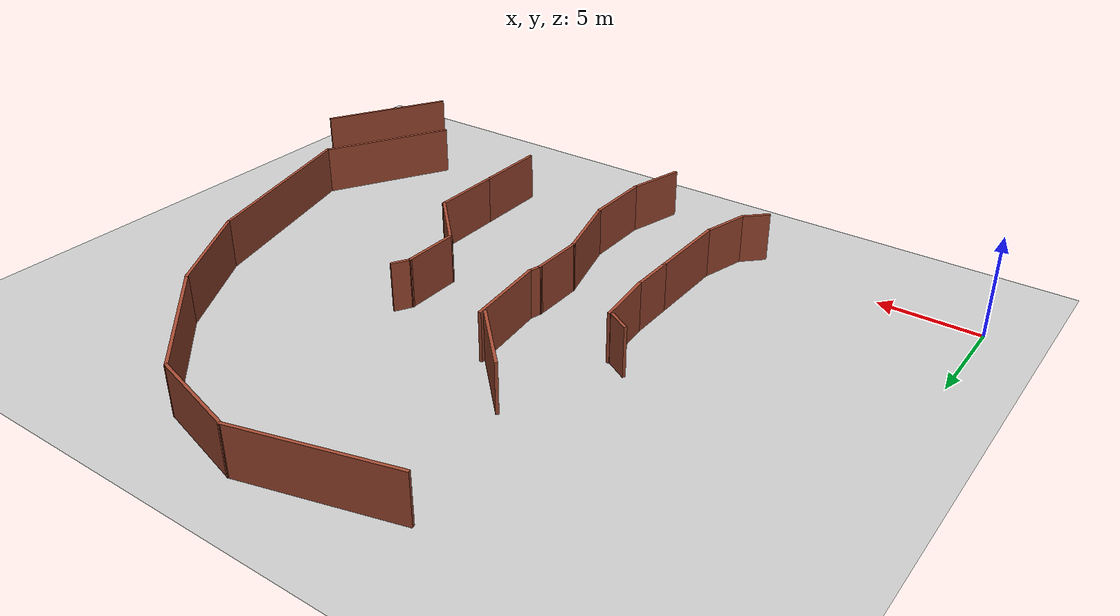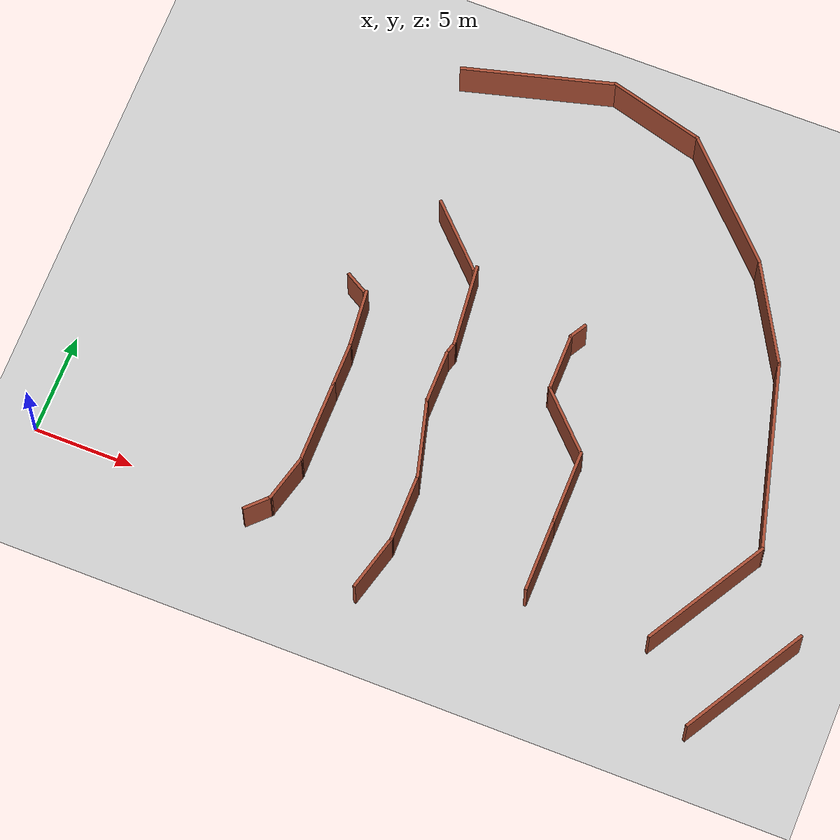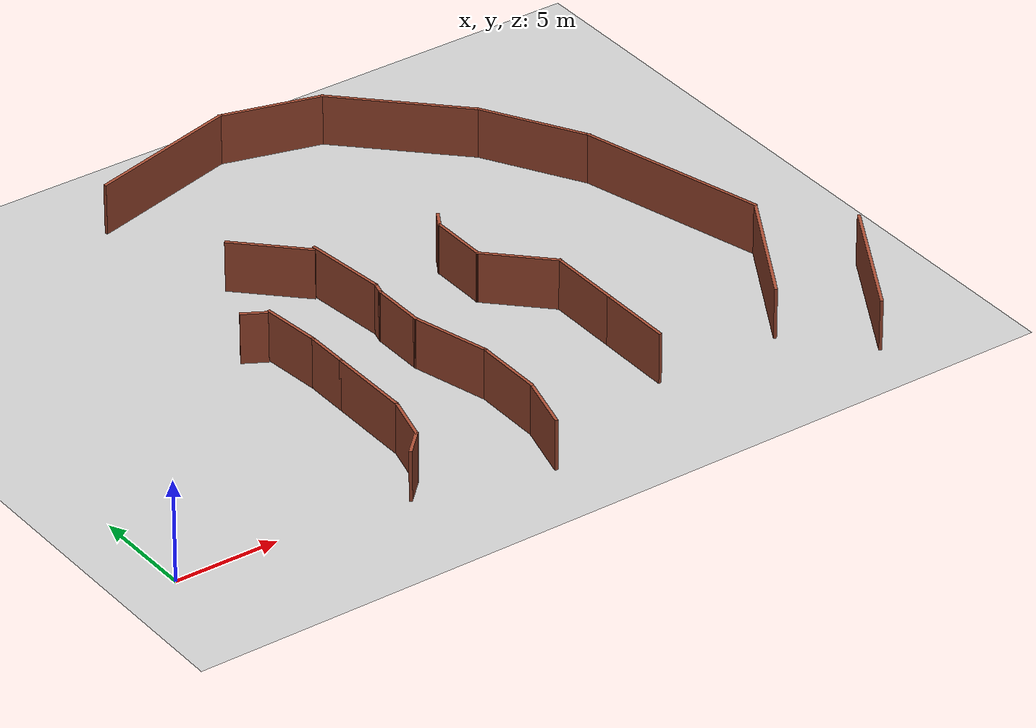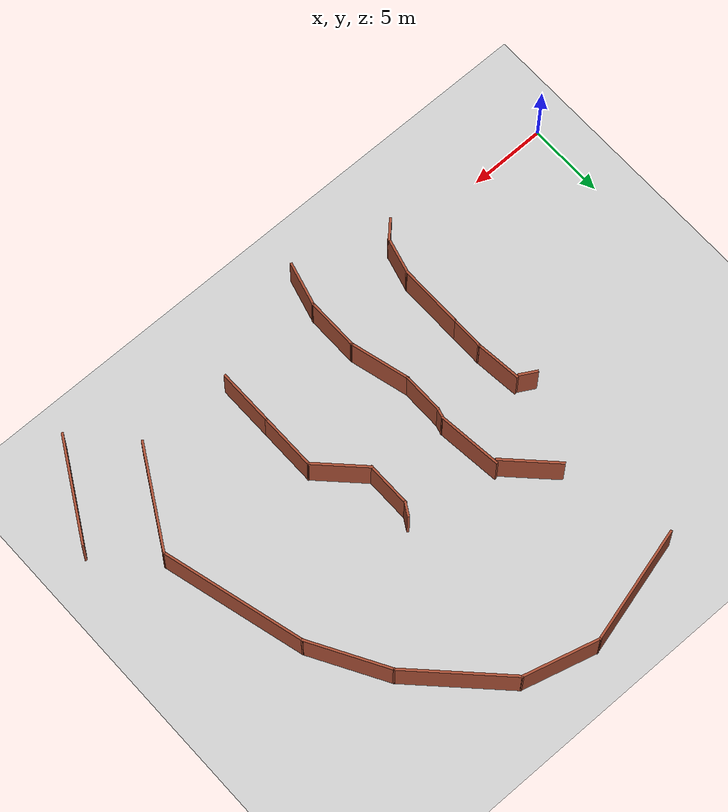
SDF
<sdf version="1.5">
 <world name="default">
  <model name="ground_plane">
   <static>1</static>
   <link name="link">
    <collision name="collision">
     <geometry><plane><normal>0 0 1</normal><size>100 100</size></plane></geometry>
     <surface><friction><ode><mu>100</mu><mu2>50</mu2></ode></friction></surface>
    </collision>
    <visual name="visual">
     <cast_shadows>0</cast_shadows>
     <geometry><plane><normal>0 0 1</normal><size>100 100</size></plane></geometry>
     <material>
      <script><uri>file://media/materials/scripts/gazebo.material</uri><name>Gazebo/Grey</name></script>
     </material>
    </visual>
   </link>
  </model>
  <model name="Untitled1111">
   <link name="Wall_102">
    <pose>15.4586 -1.70898 0 0 -0 1.309</pose>
    <visual name="Wall_102_Visual">
     <pose>0 0 1.25 0 -0 0</pose>
     <geometry><box><size>3 0.15 2.5</size></box></geometry>
     <material>
      <script><uri>file://media/materials/scripts/gazebo.material</uri><name>Gazebo/Bricks</name></script>
      <ambient>1 1 1 1</ambient>
      <shader type="pixel"/>
     </material>
     <meta><layer>0</layer></meta>
    </visual>
    <collision name="Wall_102_Collision">
     <pose>0 0 1.25 0 -0 0</pose>
     <geometry><box><size>3 0.15 2.5</size></box></geometry>
     <surface>
      <friction>
       <ode><mu>1</mu><mu2>1</mu2><fdir1>0 0 0</fdir1><slip1>0</slip1><slip2>0</slip2></ode>
       <torsional>
        <coefficient>1</coefficient>
        <patch_radius>0</patch_radius>
        <surface_radius>0</surface_radius>
        <use_patch_radius>1</use_patch_radius>
        <ode><slip>0</slip></ode>
       </torsional>
      </friction>
      <bounce><restitution_coefficient>0</restitution_coefficient><threshold>1e+06</threshold></bounce>
      <contact>
       <collide_without_contact>0</collide_without_contact>
       <collide_without_contact_bitmask>1</collide_without_contact_bitmask>
       <collide_bitmask>1</collide_bitmask>
       <ode>
        <soft_cfm>0</soft_cfm>
        <soft_erp>0.2</soft_erp>
        <kp>1e+13</kp>
        <kd>1</kd>
        <max_vel>0.01</max_vel>
        <min_depth>0</min_depth>
       </ode>
       <bullet>
        <split_impulse>1</split_impulse>
        <split_impulse_penetration_threshold>-0.01</split_impulse_penetration_threshold>
        <soft_cfm>0</soft_cfm>
        <soft_erp>0.2</soft_erp>
        <kp>1e+13</kp>
        <kd>1</kd>
       </bullet>
      </contact>
     </surface>
    </collision>
   </link>
   <link name="Wall_103">
    <pose>15.8274 1.34246 0 0 -0 1.5708</pose>
    <visual name="Wall_103_Visual">
     <pose>0 0 1.25 0 -0 0</pose>
     <geometry><box><size>3.5 0.15 2.5</size></box></geometry>
     <material>
      <script><uri>file://media/materials/scripts/gazebo.material</uri><name>Gazebo/Bricks</name></script>
      <ambient>1 1 1 1</ambient>
      <shader type="pixel"/>
     </material>
     <meta><layer>0</layer></meta>
    </visual>
    <collision name="Wall_103_Collision">
     <pose>0 0 1.25 0 -0 0</pose>
     <geometry><box><size>3.5 0.15 2.5</size></box></geometry>
     <surface>
      <friction>
       <ode><mu>1</mu><mu2>1</mu2><fdir1>0 0 0</fdir1><slip1>0</slip1><slip2>0</slip2></ode>
       <torsional>
        <coefficient>1</coefficient>
        <patch_radius>0</patch_radius>
        <surface_radius>0</surface_radius>
        <use_patch_radius>1</use_patch_radius>
        <ode><slip>0</slip></ode>
       </torsional>
      </friction>
      <bounce><restitution_coefficient>0</restitution_coefficient><threshold>1e+06</threshold></bounce>
      <contact>
       <collide_without_contact>0</collide_without_contact>
       <collide_without_contact_bitmask>1</collide_without_contact_bitmask>
       <collide_bitmask>1</collide_bitmask>
       <ode>
        <soft_cfm>0</soft_cfm>
        <soft_erp>0.2</soft_erp>
        <kp>1e+13</kp>
        <kd>1</kd>
        <max_vel>0.01</max_vel>
        <min_depth>0</min_depth>
       </ode>
       <bullet>
        <split_impulse>1</split_impulse>
        <split_impulse_penetration_threshold>-0.01</split_impulse_penetration_threshold>
        <soft_cfm>0</soft_cfm>
        <soft_erp>0.2</soft_erp>
        <kp>1e+13</kp>
        <kd>1</kd>
       </bullet>
      </contact>
     </surface>
    </collision>
   </link>
   <link name="Wall_104">
    <pose>15.3292 4.87687 0 0 -0 1.8326</pose>
    <visual name="Wall_104_Visual">
     <pose>0 0 1.25 0 -0 0</pose>
     <geometry><box><size>4 0.15 2.5</size></box></geometry>
     <material>
      <script><uri>file://media/materials/scripts/gazebo.material</uri><name>Gazebo/Bricks</name></script>
      <ambient>1 1 1 1</ambient>
      <shader type="pixel"/>
     </material>
     <meta><layer>0</layer></meta>
    </visual>
    <collision name="Wall_104_Collision">
     <pose>0 0 1.25 0 -0 0</pose>
     <geometry><box><size>4 0.15 2.5</size></box></geometry>
     <surface>
      <friction>
       <ode><mu>1</mu><mu2>1</mu2><fdir1>0 0 0</fdir1><slip1>0</slip1><slip2>0</slip2></ode>
       <torsional>
        <coefficient>1</coefficient>
        <patch_radius>0</patch_radius>
        <surface_radius>0</surface_radius>
        <use_patch_radius>1</use_patch_radius>
        <ode><slip>0</slip></ode>
       </torsional>
      </friction>
      <bounce><restitution_coefficient>0</restitution_coefficient><threshold>1e+06</threshold></bounce>
      <contact>
       <collide_without_contact>0</collide_without_contact>
       <collide_without_contact_bitmask>1</collide_without_contact_bitmask>
       <collide_bitmask>1</collide_bitmask>
       <ode>
        <soft_cfm>0</soft_cfm>
        <soft_erp>0.2</soft_erp>
        <kp>1e+13</kp>
        <kd>1</kd>
        <max_vel>0.01</max_vel>
        <min_depth>0</min_depth>
       </ode>
       <bullet>
        <split_impulse>1</split_impulse>
        <split_impulse_penetration_threshold>-0.01</split_impulse_penetration_threshold>
        <soft_cfm>0</soft_cfm>
        <soft_erp>0.2</soft_erp>
        <kp>1e+13</kp>
        <kd>1</kd>
       </bullet>
      </contact>
     </surface>
    </collision>
   </link>
   <link name="Wall_105">
    <pose>14.831 8.03628 0 0 -0 1.5708</pose>
    <visual name="Wall_105_Visual">
     <pose>0 0 1.25 0 -0 0</pose>
     <geometry><box><size>2.75 0.15 2.5</size></box></geometry>
     <material>
      <script><uri>file://media/materials/scripts/gazebo.material</uri><name>Gazebo/Bricks</name></script>
      <ambient>1 1 1 1</ambient>
      <shader type="pixel"/>
     </material>
     <meta><layer>0</layer></meta>
    </visual>
    <collision name="Wall_105_Collision">
     <pose>0 0 1.25 0 -0 0</pose>
     <geometry><box><size>2.75 0.15 2.5</size></box></geometry>
     <surface>
      <friction>
       <ode><mu>1</mu><mu2>1</mu2><fdir1>0 0 0</fdir1><slip1>0</slip1><slip2>0</slip2></ode>
       <torsional>
        <coefficient>1</coefficient>
        <patch_radius>0</patch_radius>
        <surface_radius>0</surface_radius>
        <use_patch_radius>1</use_patch_radius>
        <ode><slip>0</slip></ode>
       </torsional>
      </friction>
      <bounce><restitution_coefficient>0</restitution_coefficient><threshold>1e+06</threshold></bounce>
      <contact>
       <collide_without_contact>0</collide_without_contact>
       <collide_without_contact_bitmask>1</collide_without_contact_bitmask>
       <collide_bitmask>1</collide_bitmask>
       <ode>
        <soft_cfm>0</soft_cfm>
        <soft_erp>0.2</soft_erp>
        <kp>1e+13</kp>
        <kd>1</kd>
        <max_vel>0.01</max_vel>
        <min_depth>0</min_depth>
       </ode>
       <bullet>
        <split_impulse>1</split_impulse>
        <split_impulse_penetration_threshold>-0.01</split_impulse_penetration_threshold>
        <soft_cfm>0</soft_cfm>
        <soft_erp>0.2</soft_erp>
        <kp>1e+13</kp>
        <kd>1</kd>
       </bullet>
      </contact>
     </surface>
    </collision>
   </link>
   <link name="Wall_106">
    <pose>14.9086 9.62606 0 0 -0 1.309</pose>
    <visual name="Wall_106_Visual">
     <pose>0 0 1.25 0 -0 0</pose>
     <geometry><box><size>0.75 0.15 2.5</size></box></geometry>
     <material>
      <script><uri>file://media/materials/scripts/gazebo.material</uri><name>Gazebo/Bricks</name></script>
      <ambient>1 1 1 1</ambient>
      <shader type="pixel"/>
     </material>
     <meta><layer>0</layer></meta>
    </visual>
    <collision name="Wall_106_Collision">
     <pose>0 0 1.25 0 -0 0</pose>
     <geometry><box><size>0.75 0.15 2.5</size></box></geometry>
     <surface>
      <friction>
       <ode><mu>1</mu><mu2>1</mu2><fdir1>0 0 0</fdir1><slip1>0</slip1><slip2>0</slip2></ode>
       <torsional>
        <coefficient>1</coefficient>
        <patch_radius>0</patch_radius>
        <surface_radius>0</surface_radius>
        <use_patch_radius>1</use_patch_radius>
        <ode><slip>0</slip></ode>
       </torsional>
      </friction>
      <bounce><restitution_coefficient>0</restitution_coefficient><threshold>1e+06</threshold></bounce>
      <contact>
       <collide_without_contact>0</collide_without_contact>
       <collide_without_contact_bitmask>1</collide_without_contact_bitmask>
       <collide_bitmask>1</collide_bitmask>
       <ode>
        <soft_cfm>0</soft_cfm>
        <soft_erp>0.2</soft_erp>
        <kp>1e+13</kp>
        <kd>1</kd>
        <max_vel>0.01</max_vel>
        <min_depth>0</min_depth>
       </ode>
       <bullet>
        <split_impulse>1</split_impulse>
        <split_impulse_penetration_threshold>-0.01</split_impulse_penetration_threshold>
        <soft_cfm>0</soft_cfm>
        <soft_erp>0.2</soft_erp>
        <kp>1e+13</kp>
        <kd>1</kd>
       </bullet>
      </contact>
     </surface>
    </collision>
   </link>
   <link name="Wall_107">
    <pose>14.774 11.9399 0 0 -0 1.67529</pose>
    <visual name="Wall_107_Visual">
     <pose>0 0 1.25 0 -0 0</pose>
     <geometry><box><size>4.22037 0.15 2.5</size></box></geometry>
     <material>
      <script><uri>file://media/materials/scripts/gazebo.material</uri><name>Gazebo/Bricks</name></script>
      <ambient>1 1 1 1</ambient>
      <shader type="pixel"/>
     </material>
     <meta><layer>0</layer></meta>
    </visual>
    <collision name="Wall_107_Collision">
     <pose>0 0 1.25 0 -0 0</pose>
     <geometry><box><size>4.22037 0.15 2.5</size></box></geometry>
     <surface>
      <friction>
       <ode><mu>1</mu><mu2>1</mu2><fdir1>0 0 0</fdir1><slip1>0</slip1><slip2>0</slip2></ode>
       <torsional>
        <coefficient>1</coefficient>
        <patch_radius>0</patch_radius>
        <surface_radius>0</surface_radius>
        <use_patch_radius>1</use_patch_radius>
        <ode><slip>0</slip></ode>
       </torsional>
      </friction>
      <bounce><restitution_coefficient>0</restitution_coefficient><threshold>1e+06</threshold></bounce>
      <contact>
       <collide_without_contact>0</collide_without_contact>
       <collide_without_contact_bitmask>1</collide_without_contact_bitmask>
       <collide_bitmask>1</collide_bitmask>
       <ode>
        <soft_cfm>0</soft_cfm>
        <soft_erp>0.2</soft_erp>
        <kp>1e+13</kp>
        <kd>1</kd>
        <max_vel>0.01</max_vel>
        <min_depth>0</min_depth>
       </ode>
       <bullet>
        <split_impulse>1</split_impulse>
        <split_impulse_penetration_threshold>-0.01</split_impulse_penetration_threshold>
        <soft_cfm>0</soft_cfm>
        <soft_erp>0.2</soft_erp>
        <kp>1e+13</kp>
        <kd>1</kd>
       </bullet>
      </contact>
     </surface>
    </collision>
   </link>
   <link name="Wall_108">
    <pose>13.059 15.1837 0 0 -0 2.35619</pose>
    <visual name="Wall_108_Visual">
     <pose>0 0 1.25 0 -0 0</pose>
     <geometry><box><size>4 0.15 2.5</size></box></geometry>
     <material>
      <script><uri>file://media/materials/scripts/gazebo.material</uri><name>Gazebo/Bricks</name></script>
      <ambient>1 1 1 1</ambient>
      <shader type="pixel"/>
     </material>
     <meta><layer>0</layer></meta>
    </visual>
    <collision name="Wall_108_Collision">
     <pose>0 0 1.25 0 -0 0</pose>
     <geometry><box><size>4 0.15 2.5</size></box></geometry>
     <surface>
      <friction>
       <ode><mu>1</mu><mu2>1</mu2><fdir1>0 0 0</fdir1><slip1>0</slip1><slip2>0</slip2></ode>
       <torsional>
        <coefficient>1</coefficient>
        <patch_radius>0</patch_radius>
        <surface_radius>0</surface_radius>
        <use_patch_radius>1</use_patch_radius>
        <ode><slip>0</slip></ode>
       </torsional>
      </friction>
      <bounce><restitution_coefficient>0</restitution_coefficient><threshold>1e+06</threshold></bounce>
      <contact>
       <collide_without_contact>0</collide_without_contact>
       <collide_without_contact_bitmask>1</collide_without_contact_bitmask>
       <collide_bitmask>1</collide_bitmask>
       <ode>
        <soft_cfm>0</soft_cfm>
        <soft_erp>0.2</soft_erp>
        <kp>1e+13</kp>
        <kd>1</kd>
        <max_vel>0.01</max_vel>
        <min_depth>0</min_depth>
       </ode>
       <bullet>
        <split_impulse>1</split_impulse>
        <split_impulse_penetration_threshold>-0.01</split_impulse_penetration_threshold>
        <soft_cfm>0</soft_cfm>
        <soft_erp>0.2</soft_erp>
        <kp>1e+13</kp>
        <kd>1</kd>
       </bullet>
      </contact>
     </surface>
    </collision>
   </link>
   <link name="Wall_134">
    <pose>22.5764 1.50892 0 0 -0 1.5708</pose>
    <visual name="Wall_134_Visual">
     <pose>0 0 1.25 0 -0 0</pose>
     <geometry><box><size>3.75 0.15 2.5</size></box></geometry>
     <material>
      <script><uri>file://media/materials/scripts/gazebo.material</uri><name>Gazebo/Bricks</name></script>
      <ambient>1 1 1 1</ambient>
      <shader type="pixel"/>
     </material>
     <meta><layer>0</layer></meta>
    </visual>
    <collision name="Wall_134_Collision">
     <pose>0 0 1.25 0 -0 0</pose>
     <geometry><box><size>3.75 0.15 2.5</size></box></geometry>
     <surface>
      <friction>
       <ode><mu>1</mu><mu2>1</mu2><fdir1>0 0 0</fdir1><slip1>0</slip1><slip2>0</slip2></ode>
       <torsional>
        <coefficient>1</coefficient>
        <patch_radius>0</patch_radius>
        <surface_radius>0</surface_radius>
        <use_patch_radius>1</use_patch_radius>
        <ode><slip>0</slip></ode>
       </torsional>
      </friction>
      <bounce><restitution_coefficient>0</restitution_coefficient><threshold>1e+06</threshold></bounce>
      <contact>
       <collide_without_contact>0</collide_without_contact>
       <collide_without_contact_bitmask>1</collide_without_contact_bitmask>
       <collide_bitmask>1</collide_bitmask>
       <ode>
        <soft_cfm>0</soft_cfm>
        <soft_erp>0.2</soft_erp>
        <kp>1e+13</kp>
        <kd>1</kd>
        <max_vel>0.01</max_vel>
        <min_depth>0</min_depth>
       </ode>
       <bullet>
        <split_impulse>1</split_impulse>
        <split_impulse_penetration_threshold>-0.01</split_impulse_penetration_threshold>
        <soft_cfm>0</soft_cfm>
        <soft_erp>0.2</soft_erp>
        <kp>1e+13</kp>
        <kd>1</kd>
       </bullet>
      </contact>
     </surface>
    </collision>
   </link>
   <link name="Wall_135">
    <pose>22.5764 5.10892 0 0 -0 1.5708</pose>
    <visual name="Wall_135_Visual">
     <pose>0 0 1.25 0 -0 0</pose>
     <geometry><box><size>3.75 0.15 2.5</size></box></geometry>
     <material>
      <script><uri>file://media/materials/scripts/gazebo.material</uri><name>Gazebo/Bricks</name></script>
      <ambient>1 1 1 1</ambient>
      <shader type="pixel"/>
     </material>
     <meta><layer>0</layer></meta>
    </visual>
    <collision name="Wall_135_Collision">
     <pose>0 0 1.25 0 -0 0</pose>
     <geometry><box><size>3.75 0.15 2.5</size></box></geometry>
     <surface>
      <friction>
       <ode><mu>1</mu><mu2>1</mu2><fdir1>0 0 0</fdir1><slip1>0</slip1><slip2>0</slip2></ode>
       <torsional>
        <coefficient>1</coefficient>
        <patch_radius>0</patch_radius>
        <surface_radius>0</surface_radius>
        <use_patch_radius>1</use_patch_radius>
        <ode><slip>0</slip></ode>
       </torsional>
      </friction>
      <bounce><restitution_coefficient>0</restitution_coefficient><threshold>1e+06</threshold></bounce>
      <contact>
       <collide_without_contact>0</collide_without_contact>
       <collide_without_contact_bitmask>1</collide_without_contact_bitmask>
       <collide_bitmask>1</collide_bitmask>
       <ode>
        <soft_cfm>0</soft_cfm>
        <soft_erp>0.2</soft_erp>
        <kp>1e+13</kp>
        <kd>1</kd>
        <max_vel>0.01</max_vel>
        <min_depth>0</min_depth>
       </ode>
       <bullet>
        <split_impulse>1</split_impulse>
        <split_impulse_penetration_threshold>-0.01</split_impulse_penetration_threshold>
        <soft_cfm>0</soft_cfm>
        <soft_erp>0.2</soft_erp>
        <kp>1e+13</kp>
        <kd>1</kd>
       </bullet>
      </contact>
     </surface>
    </collision>
   </link>
   <link name="Wall_136">
    <pose>21.3036 8.18172 0 0 -0 2.35619</pose>
    <visual name="Wall_136_Visual">
     <pose>0 0 1.25 0 -0 0</pose>
     <geometry><box><size>3.75 0.15 2.5</size></box></geometry>
     <material>
      <script><uri>file://media/materials/scripts/gazebo.material</uri><name>Gazebo/Bricks</name></script>
      <ambient>1 1 1 1</ambient>
      <shader type="pixel"/>
     </material>
     <meta><layer>0</layer></meta>
    </visual>
    <collision name="Wall_136_Collision">
     <pose>0 0 1.25 0 -0 0</pose>
     <geometry><box><size>3.75 0.15 2.5</size></box></geometry>
     <surface>
      <friction>
       <ode><mu>1</mu><mu2>1</mu2><fdir1>0 0 0</fdir1><slip1>0</slip1><slip2>0</slip2></ode>
       <torsional>
        <coefficient>1</coefficient>
        <patch_radius>0</patch_radius>
        <surface_radius>0</surface_radius>
        <use_patch_radius>1</use_patch_radius>
        <ode><slip>0</slip></ode>
       </torsional>
      </friction>
      <bounce><restitution_coefficient>0</restitution_coefficient><threshold>1e+06</threshold></bounce>
      <contact>
       <collide_without_contact>0</collide_without_contact>
       <collide_without_contact_bitmask>1</collide_without_contact_bitmask>
       <collide_bitmask>1</collide_bitmask>
       <ode>
        <soft_cfm>0</soft_cfm>
        <soft_erp>0.2</soft_erp>
        <kp>1e+13</kp>
        <kd>1</kd>
        <max_vel>0.01</max_vel>
        <min_depth>0</min_depth>
       </ode>
       <bullet>
        <split_impulse>1</split_impulse>
        <split_impulse_penetration_threshold>-0.01</split_impulse_penetration_threshold>
        <soft_cfm>0</soft_cfm>
        <soft_erp>0.2</soft_erp>
        <kp>1e+13</kp>
        <kd>1</kd>
       </bullet>
      </contact>
     </surface>
    </collision>
   </link>
   <link name="Wall_137">
    <pose>20.0308 10.8795 0 0 -0 1.5708</pose>
    <visual name="Wall_137_Visual">
     <pose>0 0 1.25 0 -0 0</pose>
     <geometry><box><size>3 0.15 2.5</size></box></geometry>
     <material>
      <script><uri>file://media/materials/scripts/gazebo.material</uri><name>Gazebo/Bricks</name></script>
      <ambient>1 1 1 1</ambient>
      <shader type="pixel"/>
     </material>
     <meta><layer>0</layer></meta>
    </visual>
    <collision name="Wall_137_Collision">
     <pose>0 0 1.25 0 -0 0</pose>
     <geometry><box><size>3 0.15 2.5</size></box></geometry>
     <surface>
      <friction>
       <ode><mu>1</mu><mu2>1</mu2><fdir1>0 0 0</fdir1><slip1>0</slip1><slip2>0</slip2></ode>
       <torsional>
        <coefficient>1</coefficient>
        <patch_radius>0</patch_radius>
        <surface_radius>0</surface_radius>
        <use_patch_radius>1</use_patch_radius>
        <ode><slip>0</slip></ode>
       </torsional>
      </friction>
      <bounce><restitution_coefficient>0</restitution_coefficient><threshold>1e+06</threshold></bounce>
      <contact>
       <collide_without_contact>0</collide_without_contact>
       <collide_without_contact_bitmask>1</collide_without_contact_bitmask>
       <collide_bitmask>1</collide_bitmask>
       <ode>
        <soft_cfm>0</soft_cfm>
        <soft_erp>0.2</soft_erp>
        <kp>1e+13</kp>
        <kd>1</kd>
        <max_vel>0.01</max_vel>
        <min_depth>0</min_depth>
       </ode>
       <bullet>
        <split_impulse>1</split_impulse>
        <split_impulse_penetration_threshold>-0.01</split_impulse_penetration_threshold>
        <soft_cfm>0</soft_cfm>
        <soft_erp>0.2</soft_erp>
        <kp>1e+13</kp>
        <kd>1</kd>
       </bullet>
      </contact>
     </surface>
    </collision>
   </link>
   <link name="Wall_138">
    <pose>20.2433 12.6726 0 0 -0 1.0472</pose>
    <visual name="Wall_138_Visual">
     <pose>0 0 1.25 0 -0 0</pose>
     <geometry><box><size>1 0.15 2.5</size></box></geometry>
     <material>
      <script><uri>file://media/materials/scripts/gazebo.material</uri><name>Gazebo/Bricks</name></script>
      <ambient>1 1 1 1</ambient>
      <shader type="pixel"/>
     </material>
     <meta><layer>0</layer></meta>
    </visual>
    <collision name="Wall_138_Collision">
     <pose>0 0 1.25 0 -0 0</pose>
     <geometry><box><size>1 0.15 2.5</size></box></geometry>
     <surface>
      <friction>
       <ode><mu>1</mu><mu2>1</mu2><fdir1>0 0 0</fdir1><slip1>0</slip1><slip2>0</slip2></ode>
       <torsional>
        <coefficient>1</coefficient>
        <patch_radius>0</patch_radius>
        <surface_radius>0</surface_radius>
        <use_patch_radius>1</use_patch_radius>
        <ode><slip>0</slip></ode>
       </torsional>
      </friction>
      <bounce><restitution_coefficient>0</restitution_coefficient><threshold>1e+06</threshold></bounce>
      <contact>
       <collide_without_contact>0</collide_without_contact>
       <collide_without_contact_bitmask>1</collide_without_contact_bitmask>
       <collide_bitmask>1</collide_bitmask>
       <ode>
        <soft_cfm>0</soft_cfm>
        <soft_erp>0.2</soft_erp>
        <kp>1e+13</kp>
        <kd>1</kd>
        <max_vel>0.01</max_vel>
        <min_depth>0</min_depth>
       </ode>
       <bullet>
        <split_impulse>1</split_impulse>
        <split_impulse_penetration_threshold>-0.01</split_impulse_penetration_threshold>
        <soft_cfm>0</soft_cfm>
        <soft_erp>0.2</soft_erp>
        <kp>1e+13</kp>
        <kd>1</kd>
       </bullet>
      </contact>
     </surface>
    </collision>
   </link>
   <link name="Wall_163">
    <pose>13.6998 24.5217 0 0 -0 0.261799</pose>
    <visual name="Wall_163_Visual">
     <pose>0 0 1.25 0 -0 0</pose>
     <geometry><box><size>7.75 0.15 2.5</size></box></geometry>
     <material>
      <script><uri>file://media/materials/scripts/gazebo.material</uri><name>Gazebo/Bricks</name></script>
      <ambient>1 1 1 1</ambient>
      <shader type="pixel"/>
     </material>
     <meta><layer>0</layer></meta>
    </visual>
    <collision name="Wall_163_Collision">
     <pose>0 0 1.25 0 -0 0</pose>
     <geometry><box><size>7.75 0.15 2.5</size></box></geometry>
     <surface>
      <friction>
       <ode><mu>1</mu><mu2>1</mu2><fdir1>0 0 0</fdir1><slip1>0</slip1><slip2>0</slip2></ode>
       <torsional>
        <coefficient>1</coefficient>
        <patch_radius>0</patch_radius>
        <surface_radius>0</surface_radius>
        <use_patch_radius>1</use_patch_radius>
        <ode><slip>0</slip></ode>
       </torsional>
      </friction>
      <bounce><restitution_coefficient>0</restitution_coefficient><threshold>1e+06</threshold></bounce>
      <contact>
       <collide_without_contact>0</collide_without_contact>
       <collide_without_contact_bitmask>1</collide_without_contact_bitmask>
       <collide_bitmask>1</collide_bitmask>
       <ode>
        <soft_cfm>0</soft_cfm>
        <soft_erp>0.2</soft_erp>
        <kp>1e+13</kp>
        <kd>1</kd>
        <max_vel>0.01</max_vel>
        <min_depth>0</min_depth>
       </ode>
       <bullet>
        <split_impulse>1</split_impulse>
        <split_impulse_penetration_threshold>-0.01</split_impulse_penetration_threshold>
        <soft_cfm>0</soft_cfm>
        <soft_erp>0.2</soft_erp>
        <kp>1e+13</kp>
        <kd>1</kd>
       </bullet>
      </contact>
     </surface>
    </collision>
   </link>
   <link name="Wall_164">
    <pose>19.7127 24.8776 0 0 0 -0.261799</pose>
    <visual name="Wall_164_Visual">
     <pose>0 0 1.25 0 -0 0</pose>
     <geometry><box><size>5 0.15 2.5</size></box></geometry>
     <material>
      <script><uri>file://media/materials/scripts/gazebo.material</uri><name>Gazebo/Bricks</name></script>
      <ambient>1 1 1 1</ambient>
      <shader type="pixel"/>
     </material>
     <meta><layer>0</layer></meta>
    </visual>
    <collision name="Wall_164_Collision">
     <pose>0 0 1.25 0 -0 0</pose>
     <geometry><box><size>5 0.15 2.5</size></box></geometry>
     <surface>
      <friction>
       <ode><mu>1</mu><mu2>1</mu2><fdir1>0 0 0</fdir1><slip1>0</slip1><slip2>0</slip2></ode>
       <torsional>
        <coefficient>1</coefficient>
        <patch_radius>0</patch_radius>
        <surface_radius>0</surface_radius>
        <use_patch_radius>1</use_patch_radius>
        <ode><slip>0</slip></ode>
       </torsional>
      </friction>
      <bounce><restitution_coefficient>0</restitution_coefficient><threshold>1e+06</threshold></bounce>
      <contact>
       <collide_without_contact>0</collide_without_contact>
       <collide_without_contact_bitmask>1</collide_without_contact_bitmask>
       <collide_bitmask>1</collide_bitmask>
       <ode>
        <soft_cfm>0</soft_cfm>
        <soft_erp>0.2</soft_erp>
        <kp>1e+13</kp>
        <kd>1</kd>
        <max_vel>0.01</max_vel>
        <min_depth>0</min_depth>
       </ode>
       <bullet>
        <split_impulse>1</split_impulse>
        <split_impulse_penetration_threshold>-0.01</split_impulse_penetration_threshold>
        <soft_cfm>0</soft_cfm>
        <soft_erp>0.2</soft_erp>
        <kp>1e+13</kp>
        <kd>1</kd>
       </bullet>
      </contact>
     </surface>
    </collision>
   </link>
   <link name="Wall_165">
    <pose>24.5653 21.7397 0 0 0 -0.785398</pose>
    <visual name="Wall_165_Visual">
     <pose>0 0 1.25 0 -0 0</pose>
     <geometry><box><size>7.25 0.15 2.5</size></box></geometry>
     <material>
      <script><uri>file://media/materials/scripts/gazebo.material</uri><name>Gazebo/Bricks</name></script>
      <ambient>1 1 1 1</ambient>
      <shader type="pixel"/>
     </material>
     <meta><layer>0</layer></meta>
    </visual>
    <collision name="Wall_165_Collision">
     <pose>0 0 1.25 0 -0 0</pose>
     <geometry><box><size>7.25 0.15 2.5</size></box></geometry>
     <surface>
      <friction>
       <ode><mu>1</mu><mu2>1</mu2><fdir1>0 0 0</fdir1><slip1>0</slip1><slip2>0</slip2></ode>
       <torsional>
        <coefficient>1</coefficient>
        <patch_radius>0</patch_radius>
        <surface_radius>0</surface_radius>
        <use_patch_radius>1</use_patch_radius>
        <ode><slip>0</slip></ode>
       </torsional>
      </friction>
      <bounce><restitution_coefficient>0</restitution_coefficient><threshold>1e+06</threshold></bounce>
      <contact>
       <collide_without_contact>0</collide_without_contact>
       <collide_without_contact_bitmask>1</collide_without_contact_bitmask>
       <collide_bitmask>1</collide_bitmask>
       <ode>
        <soft_cfm>0</soft_cfm>
        <soft_erp>0.2</soft_erp>
        <kp>1e+13</kp>
        <kd>1</kd>
        <max_vel>0.01</max_vel>
        <min_depth>0</min_depth>
       </ode>
       <bullet>
        <split_impulse>1</split_impulse>
        <split_impulse_penetration_threshold>-0.01</split_impulse_penetration_threshold>
        <soft_cfm>0</soft_cfm>
        <soft_erp>0.2</soft_erp>
        <kp>1e+13</kp>
        <kd>1</kd>
       </bullet>
      </contact>
     </surface>
    </collision>
   </link>
   <link name="Wall_166">
    <pose>28.413 16.9129 0 0 0 -1.0472</pose>
    <visual name="Wall_166_Visual">
     <pose>0 0 1.25 0 -0 0</pose>
     <geometry><box><size>5.5 0.15 2.5</size></box></geometry>
     <material>
      <script><uri>file://media/materials/scripts/gazebo.material</uri><name>Gazebo/Bricks</name></script>
      <ambient>1 1 1 1</ambient>
      <shader type="pixel"/>
     </material>
     <meta><layer>0</layer></meta>
    </visual>
    <collision name="Wall_166_Collision">
     <pose>0 0 1.25 0 -0 0</pose>
     <geometry><box><size>5.5 0.15 2.5</size></box></geometry>
     <surface>
      <friction>
       <ode><mu>1</mu><mu2>1</mu2><fdir1>0 0 0</fdir1><slip1>0</slip1><slip2>0</slip2></ode>
       <torsional>
        <coefficient>1</coefficient>
        <patch_radius>0</patch_radius>
        <surface_radius>0</surface_radius>
        <use_patch_radius>1</use_patch_radius>
        <ode><slip>0</slip></ode>
       </torsional>
      </friction>
      <bounce><restitution_coefficient>0</restitution_coefficient><threshold>1e+06</threshold></bounce>
      <contact>
       <collide_without_contact>0</collide_without_contact>
       <collide_without_contact_bitmask>1</collide_without_contact_bitmask>
       <collide_bitmask>1</collide_bitmask>
       <ode>
        <soft_cfm>0</soft_cfm>
        <soft_erp>0.2</soft_erp>
        <kp>1e+13</kp>
        <kd>1</kd>
        <max_vel>0.01</max_vel>
        <min_depth>0</min_depth>
       </ode>
       <bullet>
        <split_impulse>1</split_impulse>
        <split_impulse_penetration_threshold>-0.01</split_impulse_penetration_threshold>
        <soft_cfm>0</soft_cfm>
        <soft_erp>0.2</soft_erp>
        <kp>1e+13</kp>
        <kd>1</kd>
       </bullet>
      </contact>
     </surface>
    </collision>
   </link>
   <link name="Wall_167">
    <pose>30.9605 10.0805 0 0 0 -1.309</pose>
    <visual name="Wall_167_Visual">
     <pose>0 0 1.25 0 -0 0</pose>
     <geometry><box><size>9.5 0.15 2.5</size></box></geometry>
     <material>
      <script><uri>file://media/materials/scripts/gazebo.material</uri><name>Gazebo/Bricks</name></script>
      <ambient>1 1 1 1</ambient>
      <shader type="pixel"/>
     </material>
     <meta><layer>0</layer></meta>
    </visual>
    <collision name="Wall_167_Collision">
     <pose>0 0 1.25 0 -0 0</pose>
     <geometry><box><size>9.5 0.15 2.5</size></box></geometry>
     <surface>
      <friction>
       <ode><mu>1</mu><mu2>1</mu2><fdir1>0 0 0</fdir1><slip1>0</slip1><slip2>0</slip2></ode>
       <torsional>
        <coefficient>1</coefficient>
        <patch_radius>0</patch_radius>
        <surface_radius>0</surface_radius>
        <use_patch_radius>1</use_patch_radius>
        <ode><slip>0</slip></ode>
       </torsional>
      </friction>
      <bounce><restitution_coefficient>0</restitution_coefficient><threshold>1e+06</threshold></bounce>
      <contact>
       <collide_without_contact>0</collide_without_contact>
       <collide_without_contact_bitmask>1</collide_without_contact_bitmask>
       <collide_bitmask>1</collide_bitmask>
       <ode>
        <soft_cfm>0</soft_cfm>
        <soft_erp>0.2</soft_erp>
        <kp>1e+13</kp>
        <kd>1</kd>
        <max_vel>0.01</max_vel>
        <min_depth>0</min_depth>
       </ode>
       <bullet>
        <split_impulse>1</split_impulse>
        <split_impulse_penetration_threshold>-0.01</split_impulse_penetration_threshold>
        <soft_cfm>0</soft_cfm>
        <soft_erp>0.2</soft_erp>
        <kp>1e+13</kp>
        <kd>1</kd>
       </bullet>
      </contact>
     </surface>
    </collision>
   </link>
   <link name="Wall_168">
    <pose>30.4579 2.59871 0 0 0 -2.0944</pose>
    <visual name="Wall_168_Visual">
     <pose>0 0 1.25 0 -0 0</pose>
     <geometry><box><size>7 0.15 2.5</size></box></geometry>
     <material>
      <script><uri>file://media/materials/scripts/gazebo.material</uri><name>Gazebo/Bricks</name></script>
      <ambient>1 1 1 1</ambient>
      <shader type="pixel"/>
     </material>
     <meta><layer>0</layer></meta>
    </visual>
    <collision name="Wall_168_Collision">
     <pose>0 0 1.25 0 -0 0</pose>
     <geometry><box><size>7 0.15 2.5</size></box></geometry>
     <surface>
      <friction>
       <ode><mu>1</mu><mu2>1</mu2><fdir1>0 0 0</fdir1><slip1>0</slip1><slip2>0</slip2></ode>
       <torsional>
        <coefficient>1</coefficient>
        <patch_radius>0</patch_radius>
        <surface_radius>0</surface_radius>
        <use_patch_radius>1</use_patch_radius>
        <ode><slip>0</slip></ode>
       </torsional>
      </friction>
      <bounce><restitution_coefficient>0</restitution_coefficient><threshold>1e+06</threshold></bounce>
      <contact>
       <collide_without_contact>0</collide_without_contact>
       <collide_without_contact_bitmask>1</collide_without_contact_bitmask>
       <collide_bitmask>1</collide_bitmask>
       <ode>
        <soft_cfm>0</soft_cfm>
        <soft_erp>0.2</soft_erp>
        <kp>1e+13</kp>
        <kd>1</kd>
        <max_vel>0.01</max_vel>
        <min_depth>0</min_depth>
       </ode>
       <bullet>
        <split_impulse>1</split_impulse>
        <split_impulse_penetration_threshold>-0.01</split_impulse_penetration_threshold>
        <soft_cfm>0</soft_cfm>
        <soft_erp>0.2</soft_erp>
        <kp>1e+13</kp>
        <kd>1</kd>
       </bullet>
      </contact>
     </surface>
    </collision>
   </link>
   <link name="Wall_168_clone">
    <pose>33.5672 -0.785047 0 0 0 -2.0944</pose>
    <visual name="Wall_168_Visual">
     <pose>0 0 1.25 0 -0 0</pose>
     <geometry><box><size>7 0.15 2.5</size></box></geometry>
     <material>
      <script><uri>file://media/materials/scripts/gazebo.material</uri><name>Gazebo/Bricks</name></script>
      <ambient>1 1 1 1</ambient>
      <shader type="pixel"/>
     </material>
     <meta><layer>0</layer></meta>
    </visual>
    <collision name="Wall_168_Collision">
     <pose>0 0 1.25 0 -0 0</pose>
     <geometry><box><size>7 0.15 2.5</size></box></geometry>
     <surface>
      <friction>
       <ode><mu>1</mu><mu2>1</mu2><fdir1>0 0 0</fdir1><slip1>0</slip1><slip2>0</slip2></ode>
       <torsional>
        <coefficient>1</coefficient>
        <patch_radius>0</patch_radius>
        <surface_radius>0</surface_radius>
        <use_patch_radius>1</use_patch_radius>
        <ode><slip>0</slip></ode>
       </torsional>
      </friction>
      <bounce><restitution_coefficient>0</restitution_coefficient><threshold>1e+06</threshold></bounce>
      <contact>
       <collide_without_contact>0</collide_without_contact>
       <collide_without_contact_bitmask>1</collide_without_contact_bitmask>
       <collide_bitmask>1</collide_bitmask>
       <ode>
        <soft_cfm>0</soft_cfm>
        <soft_erp>0.2</soft_erp>
        <kp>1e+13</kp>
        <kd>1</kd>
        <max_vel>0.01</max_vel>
        <min_depth>0</min_depth>
       </ode>
       <bullet>
        <split_impulse>1</split_impulse>
        <split_impulse_penetration_threshold>-0.01</split_impulse_penetration_threshold>
        <soft_cfm>0</soft_cfm>
        <soft_erp>0.2</soft_erp>
        <kp>1e+13</kp>
        <kd>1</kd>
       </bullet>
      </contact>
     </surface>
    </collision>
   </link>
   <link name="Wall_57">
    <pose>9.46339 11.1133 0 0 0 -0.517838</pose>
    <visual name="Wall_57_Visual">
     <pose>0 0 1.25 0 -0 0</pose>
     <geometry><box><size>1.23085 0.15 2.5</size></box></geometry>
     <material>
      <script><uri>file://media/materials/scripts/gazebo.material</uri><name>Gazebo/Bricks</name></script>
      <ambient>1 1 1 1</ambient>
      <shader type="pixel"/>
     </material>
     <meta><layer>0</layer></meta>
    </visual>
    <collision name="Wall_57_Collision">
     <pose>0 0 1.25 0 -0 0</pose>
     <geometry><box><size>1.23085 0.15 2.5</size></box></geometry>
     <surface>
      <friction>
       <ode><mu>1</mu><mu2>1</mu2><fdir1>0 0 0</fdir1><slip1>0</slip1><slip2>0</slip2></ode>
       <torsional>
        <coefficient>1</coefficient>
        <patch_radius>0</patch_radius>
        <surface_radius>0</surface_radius>
        <use_patch_radius>1</use_patch_radius>
        <ode><slip>0</slip></ode>
       </torsional>
      </friction>
      <bounce><restitution_coefficient>0</restitution_coefficient><threshold>1e+06</threshold></bounce>
      <contact>
       <collide_without_contact>0</collide_without_contact>
       <collide_without_contact_bitmask>1</collide_without_contact_bitmask>
       <collide_bitmask>1</collide_bitmask>
       <ode>
        <soft_cfm>0</soft_cfm>
        <soft_erp>0.2</soft_erp>
        <kp>1e+13</kp>
        <kd>1</kd>
        <max_vel>0.01</max_vel>
        <min_depth>0</min_depth>
       </ode>
       <bullet>
        <split_impulse>1</split_impulse>
        <split_impulse_penetration_threshold>-0.01</split_impulse_penetration_threshold>
        <soft_cfm>0</soft_cfm>
        <soft_erp>0.2</soft_erp>
        <kp>1e+13</kp>
        <kd>1</kd>
       </bullet>
      </contact>
     </surface>
    </collision>
   </link>
   <link name="Wall_58">
    <pose>10.2409 9.40942 0 0 0 -1.46941</pose>
    <visual name="Wall_58_Visual">
     <pose>0 0 1.25 0 -0 0</pose>
     <geometry><box><size>3.03755 0.15 2.5</size></box></geometry>
     <material>
      <script><uri>file://media/materials/scripts/gazebo.material</uri><name>Gazebo/Bricks</name></script>
      <ambient>1 1 1 1</ambient>
      <shader type="pixel"/>
     </material>
     <meta><layer>0</layer></meta>
    </visual>
    <collision name="Wall_58_Collision">
     <pose>0 0 1.25 0 -0 0</pose>
     <geometry><box><size>3.03755 0.15 2.5</size></box></geometry>
     <surface>
      <friction>
       <ode><mu>1</mu><mu2>1</mu2><fdir1>0 0 0</fdir1><slip1>0</slip1><slip2>0</slip2></ode>
       <torsional>
        <coefficient>1</coefficient>
        <patch_radius>0</patch_radius>
        <surface_radius>0</surface_radius>
        <use_patch_radius>1</use_patch_radius>
        <ode><slip>0</slip></ode>
       </torsional>
      </friction>
      <bounce><restitution_coefficient>0</restitution_coefficient><threshold>1e+06</threshold></bounce>
      <contact>
       <collide_without_contact>0</collide_without_contact>
       <collide_without_contact_bitmask>1</collide_without_contact_bitmask>
       <collide_bitmask>1</collide_bitmask>
       <ode>
        <soft_cfm>0</soft_cfm>
        <soft_erp>0.2</soft_erp>
        <kp>1e+13</kp>
        <kd>1</kd>
        <max_vel>0.01</max_vel>
        <min_depth>0</min_depth>
       </ode>
       <bullet>
        <split_impulse>1</split_impulse>
        <split_impulse_penetration_threshold>-0.01</split_impulse_penetration_threshold>
        <soft_cfm>0</soft_cfm>
        <soft_erp>0.2</soft_erp>
        <kp>1e+13</kp>
        <kd>1</kd>
       </bullet>
      </contact>
     </surface>
    </collision>
   </link>
   <link name="Wall_59">
    <pose>10.387 6.92306 0 0 0 -1.5708</pose>
    <visual name="Wall_59_Visual">
     <pose>0 0 1.25 0 -0 0</pose>
     <geometry><box><size>2.25 0.15 2.5</size></box></geometry>
     <material>
      <script><uri>file://media/materials/scripts/gazebo.material</uri><name>Gazebo/Bricks</name></script>
      <ambient>1 1 1 1</ambient>
      <shader type="pixel"/>
     </material>
     <meta><layer>0</layer></meta>
    </visual>
    <collision name="Wall_59_Collision">
     <pose>0 0 1.25 0 -0 0</pose>
     <geometry><box><size>2.25 0.15 2.5</size></box></geometry>
     <surface>
      <friction>
       <ode><mu>1</mu><mu2>1</mu2><fdir1>0 0 0</fdir1><slip1>0</slip1><slip2>0</slip2></ode>
       <torsional>
        <coefficient>1</coefficient>
        <patch_radius>0</patch_radius>
        <surface_radius>0</surface_radius>
        <use_patch_radius>1</use_patch_radius>
        <ode><slip>0</slip></ode>
       </torsional>
      </friction>
      <bounce><restitution_coefficient>0</restitution_coefficient><threshold>1e+06</threshold></bounce>
      <contact>
       <collide_without_contact>0</collide_without_contact>
       <collide_without_contact_bitmask>1</collide_without_contact_bitmask>
       <collide_bitmask>1</collide_bitmask>
       <ode>
        <soft_cfm>0</soft_cfm>
        <soft_erp>0.2</soft_erp>
        <kp>1e+13</kp>
        <kd>1</kd>
        <max_vel>0.01</max_vel>
        <min_depth>0</min_depth>
       </ode>
       <bullet>
        <split_impulse>1</split_impulse>
        <split_impulse_penetration_threshold>-0.01</split_impulse_penetration_threshold>
        <soft_cfm>0</soft_cfm>
        <soft_erp>0.2</soft_erp>
        <kp>1e+13</kp>
        <kd>1</kd>
       </bullet>
      </contact>
     </surface>
    </collision>
   </link>
   <link name="Wall_60">
    <pose>10.387 3.82306 0 0 0 -1.5708</pose>
    <visual name="Wall_60_Visual">
     <pose>0 0 1.25 0 -0 0</pose>
     <geometry><box><size>4.25 0.15 2.5</size></box></geometry>
     <material>
      <script><uri>file://media/materials/scripts/gazebo.material</uri><name>Gazebo/Bricks</name></script>
      <ambient>1 1 1 1</ambient>
      <shader type="pixel"/>
     </material>
     <meta><layer>0</layer></meta>
    </visual>
    <collision name="Wall_60_Collision">
     <pose>0 0 1.25 0 -0 0</pose>
     <geometry><box><size>4.25 0.15 2.5</size></box></geometry>
     <surface>
      <friction>
       <ode><mu>1</mu><mu2>1</mu2><fdir1>0 0 0</fdir1><slip1>0</slip1><slip2>0</slip2></ode>
       <torsional>
        <coefficient>1</coefficient>
        <patch_radius>0</patch_radius>
        <surface_radius>0</surface_radius>
        <use_patch_radius>1</use_patch_radius>
        <ode><slip>0</slip></ode>
       </torsional>
      </friction>
      <bounce><restitution_coefficient>0</restitution_coefficient><threshold>1e+06</threshold></bounce>
      <contact>
       <collide_without_contact>0</collide_without_contact>
       <collide_without_contact_bitmask>1</collide_without_contact_bitmask>
       <collide_bitmask>1</collide_bitmask>
       <ode>
        <soft_cfm>0</soft_cfm>
        <soft_erp>0.2</soft_erp>
        <kp>1e+13</kp>
        <kd>1</kd>
        <max_vel>0.01</max_vel>
        <min_depth>0</min_depth>
       </ode>
       <bullet>
        <split_impulse>1</split_impulse>
        <split_impulse_penetration_threshold>-0.01</split_impulse_penetration_threshold>
        <soft_cfm>0</soft_cfm>
        <soft_erp>0.2</soft_erp>
        <kp>1e+13</kp>
        <kd>1</kd>
       </bullet>
      </contact>
     </surface>
    </collision>
   </link>
   <link name="Wall_61">
    <pose>10.0829 0.638094 0 0 0 -1.8326</pose>
    <visual name="Wall_61_Visual">
     <pose>0 0 1.25 0 -0 0</pose>
     <geometry><box><size>2.5 0.15 2.5</size></box></geometry>
     <material>
      <script><uri>file://media/materials/scripts/gazebo.material</uri><name>Gazebo/Bricks</name></script>
      <ambient>1 1 1 1</ambient>
      <shader type="pixel"/>
     </material>
     <meta><layer>0</layer></meta>
    </visual>
    <collision name="Wall_61_Collision">
     <pose>0 0 1.25 0 -0 0</pose>
     <geometry><box><size>2.5 0.15 2.5</size></box></geometry>
     <surface>
      <friction>
       <ode><mu>1</mu><mu2>1</mu2><fdir1>0 0 0</fdir1><slip1>0</slip1><slip2>0</slip2></ode>
       <torsional>
        <coefficient>1</coefficient>
        <patch_radius>0</patch_radius>
        <surface_radius>0</surface_radius>
        <use_patch_radius>1</use_patch_radius>
        <ode><slip>0</slip></ode>
       </torsional>
      </friction>
      <bounce><restitution_coefficient>0</restitution_coefficient><threshold>1e+06</threshold></bounce>
      <contact>
       <collide_without_contact>0</collide_without_contact>
       <collide_without_contact_bitmask>1</collide_without_contact_bitmask>
       <collide_bitmask>1</collide_bitmask>
       <ode>
        <soft_cfm>0</soft_cfm>
        <soft_erp>0.2</soft_erp>
        <kp>1e+13</kp>
        <kd>1</kd>
        <max_vel>0.01</max_vel>
        <min_depth>0</min_depth>
       </ode>
       <bullet>
        <split_impulse>1</split_impulse>
        <split_impulse_penetration_threshold>-0.01</split_impulse_penetration_threshold>
        <soft_cfm>0</soft_cfm>
        <soft_erp>0.2</soft_erp>
        <kp>1e+13</kp>
        <kd>1</kd>
       </bullet>
      </contact>
     </surface>
    </collision>
   </link>
   <link name="Wall_62">
    <pose>9.30151 -0.974166 0 0 0 -2.35619</pose>
    <visual name="Wall_62_Visual">
     <pose>0 0 1.25 0 -0 0</pose>
     <geometry><box><size>1.5 0.15 2.5</size></box></geometry>
     <material>
      <script><uri>file://media/materials/scripts/gazebo.material</uri><name>Gazebo/Bricks</name></script>
      <ambient>1 1 1 1</ambient>
      <shader type="pixel"/>
     </material>
     <meta><layer>0</layer></meta>
    </visual>
    <collision name="Wall_62_Collision">
     <pose>0 0 1.25 0 -0 0</pose>
     <geometry><box><size>1.5 0.15 2.5</size></box></geometry>
     <surface>
      <friction>
       <ode><mu>1</mu><mu2>1</mu2><fdir1>0 0 0</fdir1><slip1>0</slip1><slip2>0</slip2></ode>
       <torsional>
        <coefficient>1</coefficient>
        <patch_radius>0</patch_radius>
        <surface_radius>0</surface_radius>
        <use_patch_radius>1</use_patch_radius>
        <ode><slip>0</slip></ode>
       </torsional>
      </friction>
      <bounce><restitution_coefficient>0</restitution_coefficient><threshold>1e+06</threshold></bounce>
      <contact>
       <collide_without_contact>0</collide_without_contact>
       <collide_without_contact_bitmask>1</collide_without_contact_bitmask>
       <collide_bitmask>1</collide_bitmask>
       <ode>
        <soft_cfm>0</soft_cfm>
        <soft_erp>0.2</soft_erp>
        <kp>1e+13</kp>
        <kd>1</kd>
        <max_vel>0.01</max_vel>
        <min_depth>0</min_depth>
       </ode>
       <bullet>
        <split_impulse>1</split_impulse>
        <split_impulse_penetration_threshold>-0.01</split_impulse_penetration_threshold>
        <soft_cfm>0</soft_cfm>
        <soft_erp>0.2</soft_erp>
        <kp>1e+13</kp>
        <kd>1</kd>
       </bullet>
      </contact>
     </surface>
    </collision>
   </link>
   <static>1</static>
   <pose>2.40305 0.669162 0 0 -0 0</pose>
  </model>
 </world>
</sdf>
